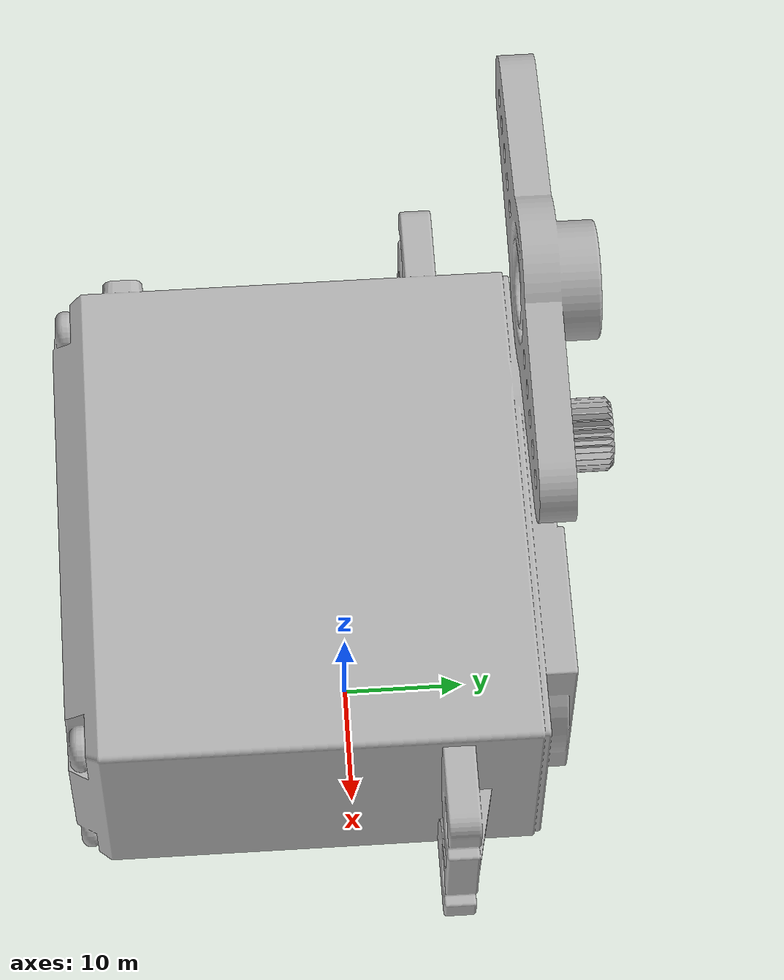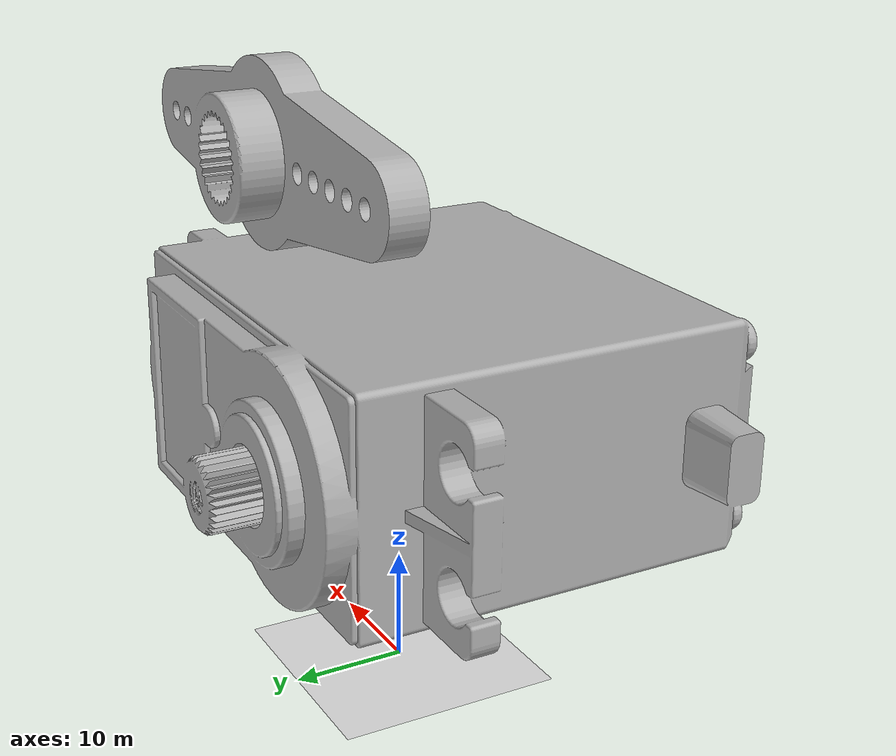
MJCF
<?xml version="1.0" encoding="utf-8"?>
<mujoco model="Untitled_Assembly">
  <compiler angle="degree" meshdir="meshes"/>

  <option gravity="0 0 -9.81"/>

  <asset>
    <mesh name="Joint_-_Horn_mesh" file="Joint_-_Horn.stl" scale="1.000000 1.000000 1.000000"/>
    <mesh name="Joint_-_mg996r_motor_mesh" file="Joint_-_mg996r_motor.stl" scale="1.000000 1.000000 1.000000"/>
  </asset>

  <worldbody>
    <light pos="0 0 3" dir="0 0 -1" diffuse="1 1 1"/>
    <geom type="plane" size="10 10 0.1" rgba="0.9 0.9 0.9 1"/>
    <body name="Joint_-_mg996r_motor" pos="0.000000 0.000000 25.011716" euler="0.00 0.00 0.00">
      <geom type="mesh" mesh="Joint_-_mg996r_motor_mesh" rgba="0.7 0.7 0.7 1"/>
      <body name="Joint_-_Horn" pos="-10.250000 16.550001 25.011716" euler="0.00 0.00 0.00">
        <joint name="Joint_-_mg996r_motor_to_Joint_-_Horn" type="slide" axis="0 0 1"/>
        <geom type="mesh" mesh="Joint_-_Horn_mesh" rgba="0.7 0.7 0.7 1"/>
      </body>
    </body>
  </worldbody>

</mujoco>
